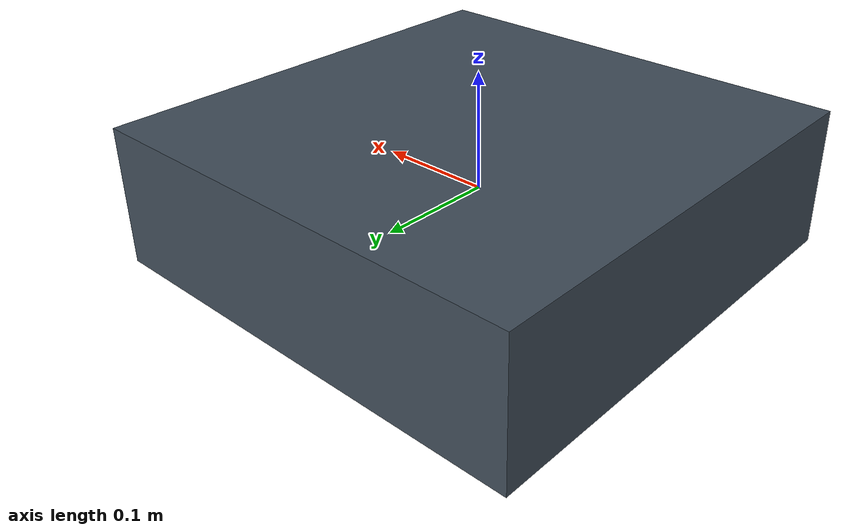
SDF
<?xml version="1.0"?>
<sdf version="1.12">
  <model name="aegis_drone">
    <static>false</static>
    <link name="base_link">
      <inertial><mass>1.5</mass><inertia>
        <ixx>0.0218</ixx><iyy>0.0218</iyy><izz>0.0400</izz>
        <ixy>0</ixy><ixz>0</ixz><iyz>0</iyz>
      </inertia></inertial>
      <collision name="body"><geometry><box><size>0.4 0.4 0.12</size></box></geometry></collision>
      <visual name="body"><geometry><box><size>0.4 0.4 0.12</size></box></geometry>
        <material><ambient>0.25 0.3 0.35 1</ambient><diffuse>0.25 0.3 0.35 1</diffuse></material>
      </visual>
      <!-- This RGB-D block is byte-equivalent in scientific settings to accepted P13. -->
      <sensor name="camera" type="rgbd_camera">
        <pose relative_to="camera_link">0 0 0 0 0 0</pose>
        <frame_id>camera_optical_frame</frame_id>
        <topic>/aegis/sim/sensors/camera</topic>
        <always_on>true</always_on><update_rate>30</update_rate>
        <camera>
          <camera_info_topic>/aegis/sim/sensors/camera/camera_info</camera_info_topic>
          <horizontal_fov>1.0471975511965976</horizontal_fov>
          <image><width>640</width><height>480</height><format>R8G8B8</format></image>
          <clip><near>0.1</near><far>20</far></clip>
        </camera>
      </sensor>
      <sensor name="p19_truth_camera" type="segmentation">
        <pose relative_to="camera_link">0 0 0 0 0 0</pose>
        <frame_id>camera_optical_frame</frame_id>
        <topic>/aegis/p19_eval/truth</topic>
        <always_on>true</always_on><update_rate>30</update_rate>
        <camera>
          <segmentation_type>semantic</segmentation_type>
          <horizontal_fov>1.0471975511965976</horizontal_fov>
          <image><width>640</width><height>480</height><format>R8G8B8</format></image>
          <clip><near>0.1</near><far>20</far></clip>
        </camera>
      </sensor>
      <sensor name="imu" type="imu">
        <pose relative_to="imu_link">0 0 0 0 0 0</pose><frame_id>imu_link</frame_id>
        <topic>/aegis/sim/sensors/imu/data</topic><always_on>true</always_on><update_rate>200</update_rate><imu/>
      </sensor>
      <sensor name="lidar" type="gpu_lidar">
        <pose relative_to="lidar_link">0 0 0 0 0 0</pose><frame_id>lidar_link</frame_id>
        <topic>/aegis/sim/sensors/lidar</topic><always_on>true</always_on><update_rate>10</update_rate>
        <lidar><scan>
          <horizontal><samples>360</samples><resolution>1</resolution><min_angle>-3.141592653589793</min_angle><max_angle>3.141592653589793</max_angle></horizontal>
          <vertical><samples>16</samples><resolution>1</resolution><min_angle>-0.2617993877991494</min_angle><max_angle>0.2617993877991494</max_angle></vertical>
        </scan><range><min>0.2</min><max>20</max><resolution>0.01</resolution></range></lidar>
      </sensor>
    </link>
    <frame name="camera_link" attached_to="base_link"><pose>0.25 0 0 0 0 0</pose></frame>
    <frame name="camera_optical_frame" attached_to="camera_link"><pose>0 0 0 -1.5707963267948966 0 -1.5707963267948966</pose></frame>
    <frame name="imu_link" attached_to="base_link"><pose>0 0 0 0 0 0</pose></frame>
    <frame name="lidar_link" attached_to="base_link"><pose>0 0 0.15 0 0 0</pose></frame>
    <plugin filename="libaegis_deterministic_motion.so" name="aegisinspect::sim::DeterministicMotionSystem"/>
  </model>
</sdf>
